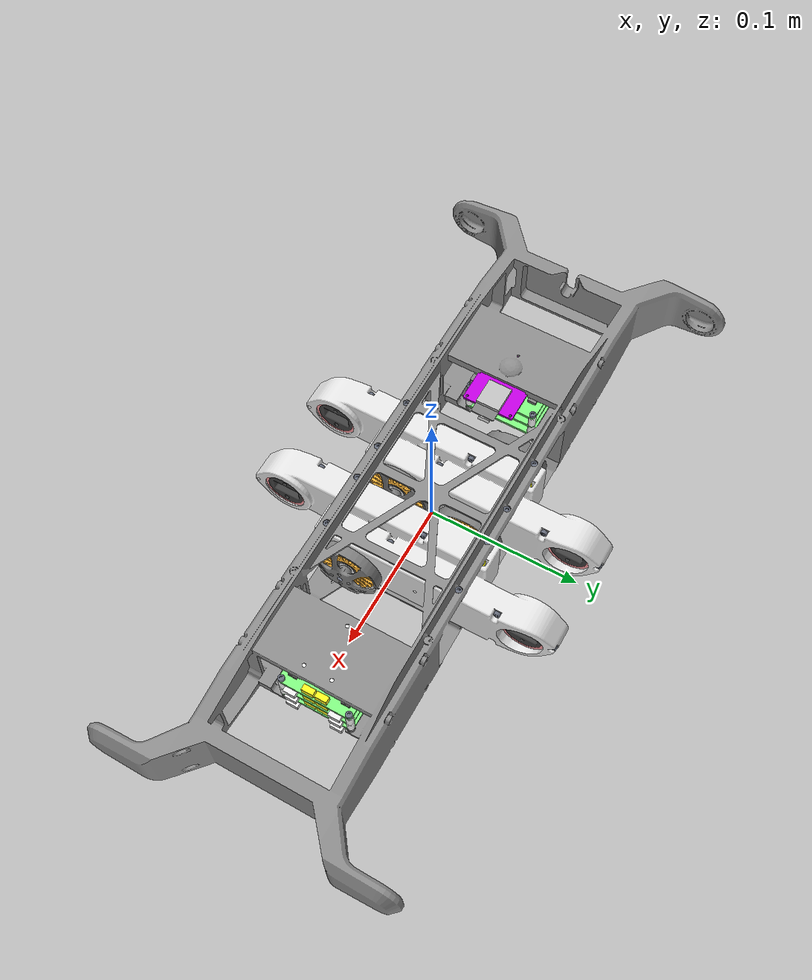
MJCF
<mujoco model="solo_12_base">
  <default>
    <default class="visual">
      <geom group="2" type="mesh" contype="0" conaffinity="0"/>
    </default>
    <default class="collision">
      <geom group="3" type="mesh"/>
    </default>
  </default>
  <asset>
    <material name="material_0" specular="1.0" shininess="0.0" rgba="0.549020 0.549020 0.549020 1.0"/>
    <material name="material_1" specular="1.0" shininess="0.0" rgba="0.749020 0.749020 0.749020 1.0"/>
    <material name="material_2" specular="1.0" shininess="0.0" rgba="1.000000 1.000000 1.000000 1.0"/>
    <material name="material_3" specular="1.0" shininess="0.0" rgba="0.501961 0.501961 0.501961 1.0"/>
    <material name="material_4" specular="1.0" shininess="0.0" rgba="0.764706 0.000000 0.886275 1.0"/>
    <material name="material_5" specular="1.0" shininess="0.0" rgba="0.929412 0.929412 0.929412 1.0"/>
    <material name="material_6" specular="1.0" shininess="0.0" rgba="0.403922 0.427451 0.486275 1.0"/>
    <material name="material_7" specular="1.0" shininess="0.0" rgba="0.501961 1.000000 0.501961 1.0"/>
    <material name="material_8" specular="1.0" shininess="0.0" rgba="1.000000 0.976471 0.121569 1.0"/>
    <material name="material_9" specular="1.0" shininess="0.0" rgba="0.627451 0.627451 0.627451 1.0"/>
    <material name="material_10" specular="1.0" shininess="0.0" rgba="0.337255 0.337255 0.337255 1.0"/>
    <material name="material_11" specular="1.0" shininess="0.0" rgba="0.247059 0.247059 0.247059 1.0"/>
    <material name="material_12" specular="1.0" shininess="0.0" rgba="1.000000 0.619608 0.639216 1.0"/>
    <material name="material_13" specular="1.0" shininess="0.0" rgba="0.992157 1.000000 0.494118 1.0"/>
    <material name="material_14" specular="1.0" shininess="0.0" rgba="0.894118 0.894118 0.894118 1.0"/>
    <material name="material_15" specular="1.0" shininess="0.0" rgba="0.749020 1.000000 0.749020 1.0"/>
    <material name="material_16" specular="1.0" shininess="0.0" rgba="0.592157 0.603922 0.709804 1.0"/>
    <material name="material_17" specular="1.0" shininess="0.0" rgba="0.858824 0.858824 0.858824 1.0"/>
    <material name="material_18" specular="1.0" shininess="0.0" rgba="0.376471 0.376471 0.376471 1.0"/>
    <material name="material_19" specular="1.0" shininess="0.0" rgba="1.000000 0.713726 0.219608 1.0"/>
    <material name="material_20" specular="1.0" shininess="0.0" rgba="0.949020 0.949020 0.949020 1.0"/>
    <material name="material_21" specular="1.0" shininess="0.0" rgba="0.792157 0.819608 0.929412 1.0"/>
    <material name="material_22" specular="1.0" shininess="0.0" rgba="1.000000 1.000000 0.000000 1.0"/>
    <material name="material_23" specular="1.0" shininess="0.0" rgba="1.000000 0.501961 0.501961 1.0"/>
    <material name="material_24" specular="1.0" shininess="0.0" rgba="0.956863 1.000000 0.403922 1.0"/>
    <material name="material_25" specular="1.0" shininess="0.0" rgba="0.654902 0.819608 1.000000 1.0"/>
    <material name="material_26" specular="1.0" shininess="0.0" rgba="0.749020 1.000000 1.000000 1.0"/>
    <material name="material_27" specular="1.0" shininess="0.0" rgba="1.000000 1.000000 0.501961 1.0"/>
    <mesh file="solo_12_base_0.obj"/>
    <mesh file="solo_12_base_1.obj"/>
    <mesh file="solo_12_base_2.obj"/>
    <mesh file="solo_12_base_3.obj"/>
    <mesh file="solo_12_base_4.obj"/>
    <mesh file="solo_12_base_5.obj"/>
    <mesh file="solo_12_base_6.obj"/>
    <mesh file="solo_12_base_7.obj"/>
    <mesh file="solo_12_base_8.obj"/>
    <mesh file="solo_12_base_9.obj"/>
    <mesh file="solo_12_base_10.obj"/>
    <mesh file="solo_12_base_11.obj"/>
    <mesh file="solo_12_base_12.obj"/>
    <mesh file="solo_12_base_13.obj"/>
    <mesh file="solo_12_base_14.obj"/>
    <mesh file="solo_12_base_15.obj"/>
    <mesh file="solo_12_base_16.obj"/>
    <mesh file="solo_12_base_17.obj"/>
    <mesh file="solo_12_base_18.obj"/>
    <mesh file="solo_12_base_19.obj"/>
    <mesh file="solo_12_base_20.obj"/>
    <mesh file="solo_12_base_21.obj"/>
    <mesh file="solo_12_base_22.obj"/>
    <mesh file="solo_12_base_23.obj"/>
    <mesh file="solo_12_base_24.obj"/>
    <mesh file="solo_12_base_25.obj"/>
    <mesh file="solo_12_base_26.obj"/>
    <mesh file="solo_12_base_27.obj"/>
  </asset>
  <worldbody>
    <body name="solo_12_base">
      <geom mesh="solo_12_base_0" material="material_27" class="visual"/>
      <geom mesh="solo_12_base_1" material="material_26" class="visual"/>
      <geom mesh="solo_12_base_2" material="material_25" class="visual"/>
      <geom mesh="solo_12_base_3" material="material_24" class="visual"/>
      <geom mesh="solo_12_base_4" material="material_23" class="visual"/>
      <geom mesh="solo_12_base_5" material="material_22" class="visual"/>
      <geom mesh="solo_12_base_6" material="material_21" class="visual"/>
      <geom mesh="solo_12_base_7" material="material_20" class="visual"/>
      <geom mesh="solo_12_base_8" material="material_19" class="visual"/>
      <geom mesh="solo_12_base_9" material="material_18" class="visual"/>
      <geom mesh="solo_12_base_10" material="material_17" class="visual"/>
      <geom mesh="solo_12_base_11" material="material_16" class="visual"/>
      <geom mesh="solo_12_base_12" material="material_15" class="visual"/>
      <geom mesh="solo_12_base_13" material="material_14" class="visual"/>
      <geom mesh="solo_12_base_14" material="material_13" class="visual"/>
      <geom mesh="solo_12_base_15" material="material_12" class="visual"/>
      <geom mesh="solo_12_base_16" material="material_11" class="visual"/>
      <geom mesh="solo_12_base_17" material="material_10" class="visual"/>
      <geom mesh="solo_12_base_18" material="material_9" class="visual"/>
      <geom mesh="solo_12_base_19" material="material_8" class="visual"/>
      <geom mesh="solo_12_base_20" material="material_7" class="visual"/>
      <geom mesh="solo_12_base_21" material="material_6" class="visual"/>
      <geom mesh="solo_12_base_22" material="material_5" class="visual"/>
      <geom mesh="solo_12_base_23" material="material_4" class="visual"/>
      <geom mesh="solo_12_base_24" material="material_3" class="visual"/>
      <geom mesh="solo_12_base_25" material="material_2" class="visual"/>
      <geom mesh="solo_12_base_26" material="material_1" class="visual"/>
      <geom mesh="solo_12_base_27" material="material_0" class="visual"/>
      <geom mesh="solo_12_base_0" class="collision"/>
      <geom mesh="solo_12_base_1" class="collision"/>
      <geom mesh="solo_12_base_2" class="collision"/>
      <geom mesh="solo_12_base_3" class="collision"/>
      <geom mesh="solo_12_base_4" class="collision"/>
      <geom mesh="solo_12_base_5" class="collision"/>
      <geom mesh="solo_12_base_6" class="collision"/>
      <geom mesh="solo_12_base_7" class="collision"/>
      <geom mesh="solo_12_base_8" class="collision"/>
      <geom mesh="solo_12_base_9" class="collision"/>
      <geom mesh="solo_12_base_10" class="collision"/>
      <geom mesh="solo_12_base_11" class="collision"/>
      <geom mesh="solo_12_base_12" class="collision"/>
      <geom mesh="solo_12_base_13" class="collision"/>
      <geom mesh="solo_12_base_14" class="collision"/>
      <geom mesh="solo_12_base_15" class="collision"/>
      <geom mesh="solo_12_base_16" class="collision"/>
      <geom mesh="solo_12_base_17" class="collision"/>
      <geom mesh="solo_12_base_18" class="collision"/>
      <geom mesh="solo_12_base_19" class="collision"/>
      <geom mesh="solo_12_base_20" class="collision"/>
      <geom mesh="solo_12_base_21" class="collision"/>
      <geom mesh="solo_12_base_22" class="collision"/>
      <geom mesh="solo_12_base_23" class="collision"/>
      <geom mesh="solo_12_base_24" class="collision"/>
      <geom mesh="solo_12_base_25" class="collision"/>
      <geom mesh="solo_12_base_26" class="collision"/>
      <geom mesh="solo_12_base_27" class="collision"/>
    </body>
  </worldbody>
</mujoco>
